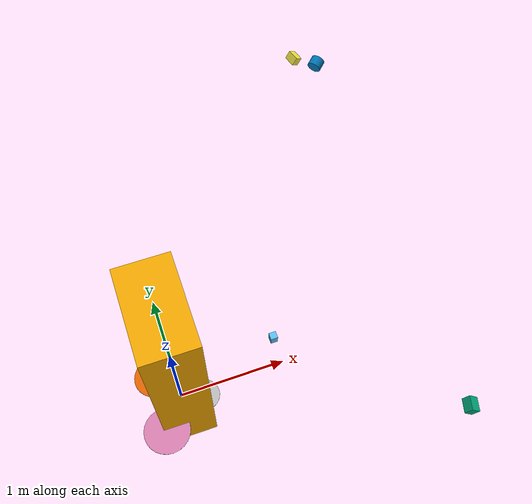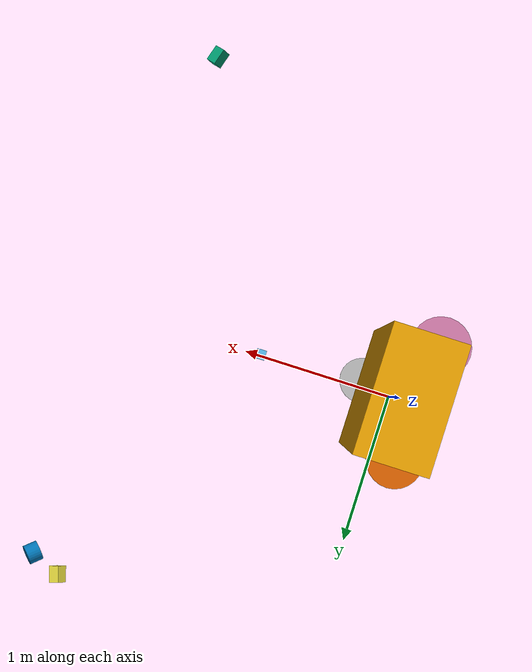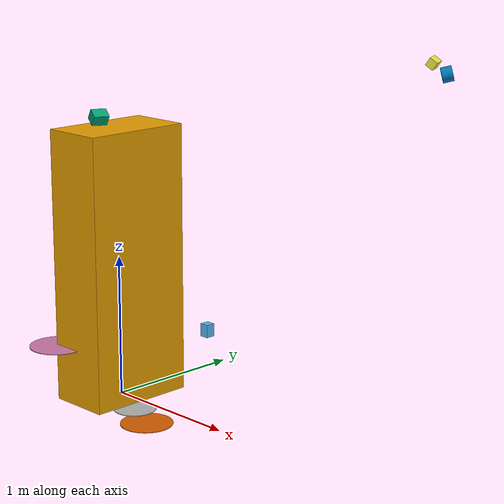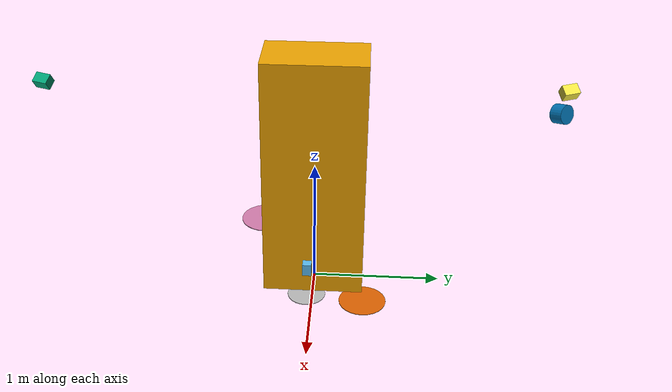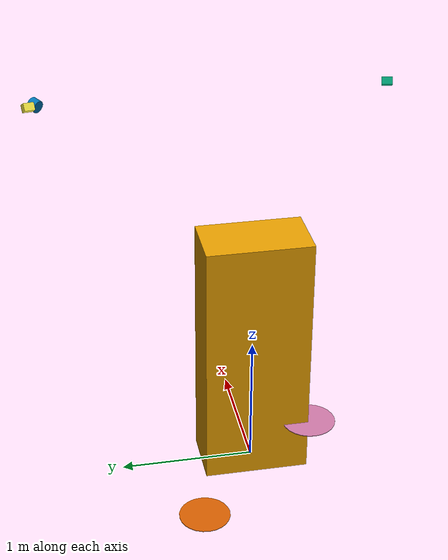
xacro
<?xml version="1.0"?>

<robot xmlns:xacro="http://www.ros.org/wiki/xacro" name="navvis">
	<link name="base">
		<visual>
			<!-- Shift the box up half its height. !-->
			<origin xyz="0.0 0.0 0.96" rpy="0.0 0.0 0.0" />
			<geometry>
				<box size="0.45 0.78 1.92" />
			</geometry>
		</visual>
		<collision>
			<!-- Shift the box up half its height. !-->
			<origin xyz="0.0 0.0 0.96" rpy="0.0 0.0 0.0" />
			<geometry>
				<box size="0.45 0.78 1.92" />
			</geometry>
		</collision>
	</link>

	<link name="laser_vert_bottom">
		<visual>
			<origin xyz="0.3158 -0.0021 0.51" rpy="3.1355 -1.3045 0.0025" />
			<geometry>
				<box size="0.062 0.062 0.087" />
			</geometry>
		</visual>
		<collision>
			<origin xyz="0.3158 -0.0021 0.51" rpy="3.1355 -1.3045 0.0025" />
			<geometry>
				<box size="0.062 0.062 0.087" />
			</geometry>
		</collision>
	</link>

	<link name="laser_vert_top_right">
		<visual>
			<origin xyz="0.2978 -0.1450 1.8451" rpy="-1.1760 0.6313 -1.9377" />
			<geometry>
				<box size="0.062 0.062 0.087" />
			</geometry>
		</visual>
		<collision>
			<origin xyz="0.2978 -0.1450 1.8451" rpy="-1.1760 0.6313 -1.9377" />
			<geometry>
				<box size="0.062 0.062 0.087" />
			</geometry>
		</collision>
	</link>

	<link name="laser_vert_top_left">
		<visual>
			<origin xyz="0.2977 0.1531 1.8443" rpy="1.1780 0.6198 1.9560" />
			<geometry>
				<box size="0.062 0.062 0.087" />
			</geometry>
		</visual>
		<collision>
			<origin xyz="0.2977 0.1531 1.8443" rpy="1.1780 0.6198 1.9560" />
			<geometry>
				<box size="0.062 0.062 0.087" />
			</geometry>
		</collision>
	</link>

	<link name="laser_horiz">
		<visual>
			<origin xyz="0.2325 0.0001 1.9201" rpy="-0.0012 0.1146 -0.0015" />
			<geometry>
				<cylinder radius="0.052" length = "0.073" />
			</geometry>
		</visual>
		<collision>
			<origin xyz="0.2977 0.1531 1.8443" rpy="1.1780 0.6198 1.9560" />
			<geometry>
				<cylinder radius="0.052" length = "0.073" />
			</geometry>
		</collision>
	</link>

	<joint name="base_laser_vert_bottom_joint" type="fixed">
		<parent link="base" />
		<child link="laser_vert_bottom" />
		<origin xyz="0.3158 -0.0021 0.5100" rpy="3.1355 -1.3045 0.0025" />
	</joint>

	<joint name="base_laser_vert_top_right_joint" type="fixed">
		<parent link="base" />
		<child link="laser_vert_top_right" />
		<origin xyz="0.2978 -0.1450 1.8451" rpy="-1.1760 0.6313 -1.9377" />
	</joint>

	<joint name="base_laser_vert_top_left_joint" type="fixed">
		<parent link="base" />
		<child link="laser_vert_top_left" />
		<origin xyz="0.2977 0.1531 1.8443" rpy="1.1780 0.6198 1.9560" />
	</joint>

	<joint name="base_laser_horiz_joint" type="fixed">
		<parent link="base" />
		<child link="laser_horiz" />
		<origin xyz="0.2977 0.1531 1.8443" rpy="1.1780 0.6198 1.9560" />
	</joint>

	<xacro:macro name="create_wheel" params="side reflect">
		<link name="wheel_${side}">
			<visual>
				<origin xyz="-0.1 ${reflect * 0.4} 0" rpy="-1.5708 0 0" />
				<geometry>
					<cylinder radius="0.2" length = "0.005" />
				</geometry>
			</visual>
			<collision>
				<origin xyz="-0.1 ${reflect * 0.4} 0" rpy="-1.5708 0 0" />
				<geometry>
					<cylinder radius="0.2" length = "0.005" />
				</geometry>
			</collision>
		</link>
		<joint name="base_wheel_${side}_joint" type="continuous">
			<parent link="base" />
			<child link="wheel_${side}" />
			<origin xyz="-0.1 ${reflect * 0.4} 0" rpy="-1.5708 0 0" />
			<axis xyz="0 1 0" />
			<limit effort="10" velocity = "10"/>
		</joint>
	</xacro:macro>

	<xacro:create_wheel side="left" reflect="1" />

	<xacro:create_wheel side="right" reflect="-1" />

	<link name="wheel_center">
		<visual>
			<origin xyz="0.1 0 -0.05" rpy="-1.5708 0 0" />
			<geometry>
				<cylinder radius="0.15" length = "0.005" />
			</geometry>
		</visual>
		<collision>
			<origin xyz="0.1 0 -0.05" rpy="-1.5708 0 0" />
			<geometry>
				<cylinder radius="0.15" length = "0.005" />
			</geometry>
		</collision>
	</link>
	<joint name="base_wheel_center_joint" type="continuous">
		<parent link="base" />
		<child link="wheel_center" />
		<origin xyz="0.1 0 -0.05" rpy="-1.5708 0 0" />
		<axis xyz="0 1 0" />
		<limit effort="10" velocity = "10"/>
	</joint>

</robot>
